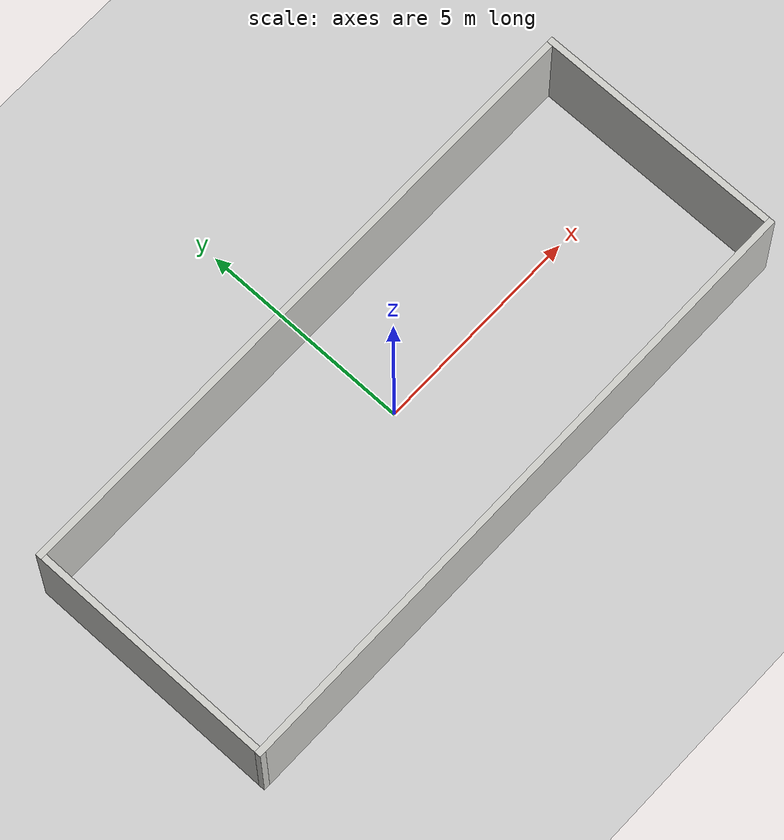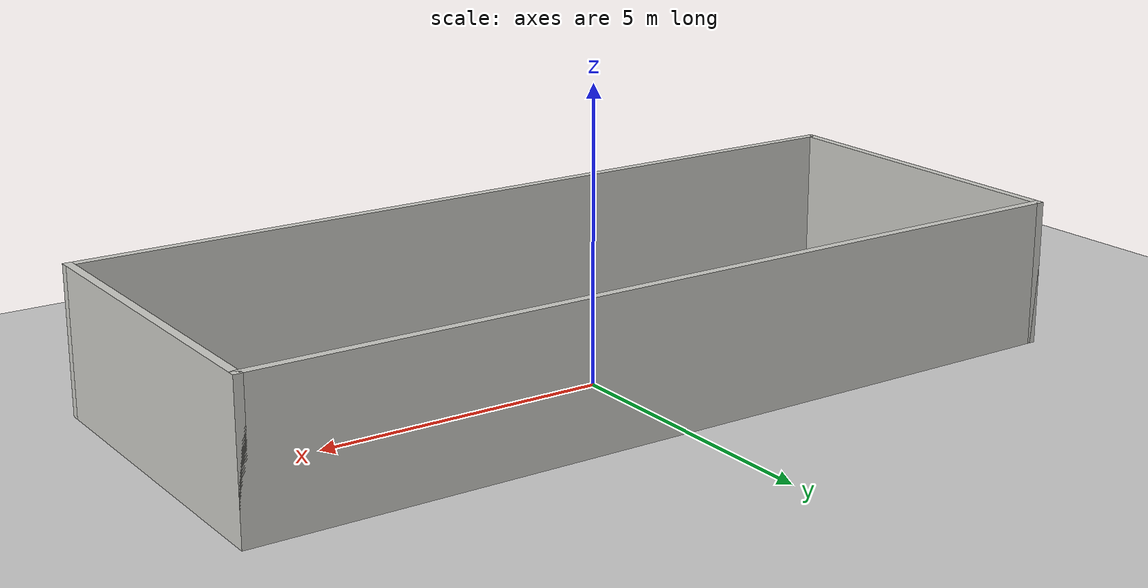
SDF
<?xml version="1.0"?>
<sdf version="1.7">
  <world name="myrobot_world">
    <scene>
      <ambient>0.5 0.5 0.5 1</ambient>
      <background>0.7 0.7 0.7 1</background>
      <shadows>true</shadows>
    </scene>

    <light type="directional" name="sun">
      <cast_shadows>true</cast_shadows>
      <pose>0 0 10 0 0 0</pose>
      <diffuse>0.8 0.8 0.8 1</diffuse>
      <specular>0.2 0.2 0.2 1</specular>
      <direction>-0.5 0.1 -0.9</direction>
    </light>

    <physics type="ode">
      <real_time_update_rate>1000.0</real_time_update_rate>
      <max_step_size>0.001</max_step_size>
      <real_time_factor>1</real_time_factor>
    </physics>

    <include>
      <uri>model://ground_plane</uri>
    </include>

    <include>
      <uri>model://Untitled</uri>
      <name>my_room</name>
      <pose>0 0 0 0 0 0</pose>
    </include>

    <gui fullscreen='0'>
      <camera name='user_camera'>
        <pose>5 -5 10 0 0.5 0</pose>
        <view_controller>orbit</view_controller>
      </camera>
    </gui>
  </world>
</sdf>

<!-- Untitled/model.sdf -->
<sdf version='1.7'>
  <model name='Untitled'>
    <pose>2.035 -3.4425 0 0 -0 0</pose>
    <link name='Wall_5'>
      <collision name='Wall_5_Collision'>
        <geometry>
          <box>
            <size>15 0.15 2.5</size>
          </box>
        </geometry>
        <pose>0 0 1.25 0 -0 0</pose>
      </collision>
      <visual name='Wall_5_Visual'>
        <pose>0 0 1.25 0 -0 0</pose>
        <geometry>
          <box>
            <size>15 0.15 2.5</size>
          </box>
        </geometry>
        <material>
          <script>
            <uri>file://media/materials/scripts/gazebo.material</uri>
            <name>Gazebo/CeilingTiled</name>
          </script>
          <ambient>0.760784 0.662745 0.627451 1</ambient>
        </material>
        <meta>
          <layer>0</layer>
        </meta>
      </visual>
      <pose>-0 2.4825 0 0 -0 0</pose>
    </link>
    <link name='Wall_6'>
      <collision name='Wall_6_Collision'>
        <geometry>
          <box>
            <size>6 0.15 2.5</size>
          </box>
        </geometry>
        <pose>0 0 1.25 0 -0 0</pose>
      </collision>
      <visual name='Wall_6_Visual'>
        <pose>0 0 1.25 0 -0 0</pose>
        <geometry>
          <box>
            <size>6 0.15 2.5</size>
          </box>
        </geometry>
        <material>
          <script>
            <uri>file://media/materials/scripts/gazebo.material</uri>
            <name>Gazebo/CeilingTiled</name>
          </script>
          <ambient>0.760784 0.662745 0.627451 1</ambient>
        </material>
        <meta>
          <layer>0</layer>
        </meta>
      </visual>
      <pose>7.425 -0.4425 0 0 -0 -1.5708</pose>
    </link>
    <link name='Wall_7'>
      <collision name='Wall_7_Collision'>
        <geometry>
          <box>
            <size>15 0.15 2.5</size>
          </box>
        </geometry>
        <pose>0 0 1.25 0 -0 0</pose>
      </collision>
      <visual name='Wall_7_Visual'>
        <pose>0 0 1.25 0 -0 0</pose>
        <geometry>
          <box>
            <size>15 0.15 2.5</size>
          </box>
        </geometry>
        <material>
          <script>
            <uri>file://media/materials/scripts/gazebo.material</uri>
            <name>Gazebo/CeilingTiled</name>
          </script>
          <ambient>0.921569 0.807843 0.615686 1</ambient>
        </material>
        <meta>
          <layer>0</layer>
        </meta>
      </visual>
      <pose>-0 -3.3675 0 0 -0 3.14159</pose>
    </link>
    <link name='Wall_8'>
      <collision name='Wall_8_Collision'>
        <geometry>
          <box>
            <size>6 0.15 2.5</size>
          </box>
        </geometry>
        <pose>0 0 1.25 0 -0 0</pose>
      </collision>
      <visual name='Wall_8_Visual'>
        <pose>0 0 1.25 0 -0 0</pose>
        <geometry>
          <box>
            <size>6 0.15 2.5</size>
          </box>
        </geometry>
        <material>
          <script>
            <uri>file://media/materials/scripts/gazebo.material</uri>
            <name>Gazebo/CeilingTiled</name>
          </script>
          <ambient>0.760784 0.662745 0.627451 1</ambient>
        </material>
        <meta>
          <layer>0</layer>
        </meta>
      </visual>
      <pose>-7.425 -0.4425 0 0 -0 1.5708</pose>
    </link>
    <static>1</static>
  </model>
</sdf>
